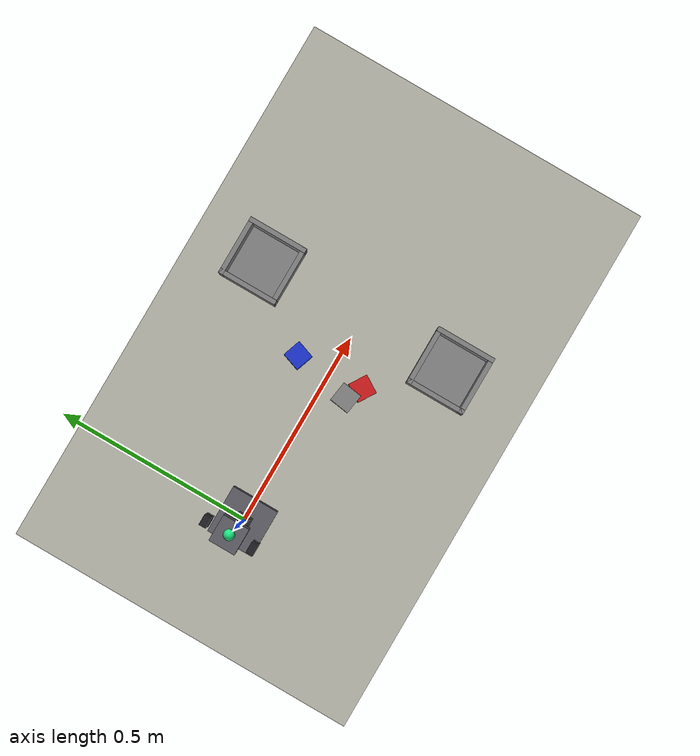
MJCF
<mujoco model="Autonomous reference tabletop arm scene_task_req_a_tabletop_robot_arm_that_sorts_red_and_blue_blo_variation_009">
  <compiler angle="radian" coordinate="local" />
  <option timestep="0.002" gravity="0 0 -9.81" />
  <!-- scene_set_id=scenes_task_req_a_tabletop_robot_arm_that_sorts_red_and_blue_blo_variation scene_id=scene_task_req_a_tabletop_robot_arm_that_sorts_red_and_blue_blo_variation_009 -->
  <default>
    <joint damping="0.8" armature="0.01" />
    <geom friction="1 0.1 0.01" />
  </default>
  <asset>
    <material name="mat_red" rgba="0.8 0.1 0.1 1" />
    <material name="mat_blue" rgba="0.1 0.2 0.8 1" />
    <material name="mat_gray" rgba="0.5 0.5 0.5 1" />
    <material name="mat_link" rgba="0.35 0.35 0.38 1" />
  </asset>
  <worldbody>
    <light name="key" pos="0 0 2" dir="0 0 -1" />
    <geom name="table" type="box" size="0.7 0.45 0.025" pos="0.4 0 0" rgba="0.7 0.7 0.65 1" />
    <body name="base_link" pos="0.0 0.0 0.025">
      <geom name="base_link_geom" type="box" size="0.06 0.06 0.035" pos="0 0 0.035" mass="0.45" material="mat_link" />
      <body name="upper_link" pos="0.0 0.0 0.07">
        <joint name="base_yaw" type="hinge" axis="0.0 0.0 1.0" pos="0 0 0" limited="true" range="-3.14 3.14" />
        <geom name="upper_link_geom" type="box" size="0.018 0.018 0.035" pos="0 0 0.035" mass="0.22" material="mat_link" />
        <body name="forearm_link" pos="0.0 0.0 0.07">
          <joint name="shoulder_pitch" type="hinge" axis="0.0 1.0 0.0" pos="0 0 0" limited="true" range="-1.57 1.57" />
          <geom name="forearm_link_geom" type="box" size="0.016 0.016 0.1785" pos="0 0 0.1785" mass="0.18" material="mat_link" />
          <body name="wrist_link" pos="0.0 0.0 0.357">
            <joint name="elbow_pitch" type="hinge" axis="0.0 1.0 0.0" pos="0 0 0" limited="true" range="-1.57 1.57" />
            <geom name="wrist_link_geom" type="box" size="0.02 0.02 0.08" pos="0 0 0.08" mass="0.035" material="mat_link" />
            <camera name="wrist_rgbd_camera" pos="0.03 0.0 0.04" xyaxes="0 -1 0 0 0 1" mode="fixed" user="0.0 0.0 0.0" />
            <body name="gripper_link" pos="0.0 0.0 0.16">
              <geom name="gripper_link_geom" type="box" size="0.03 0.03 0.035" pos="0 0 0.035" mass="0.04" material="mat_link" />
              <site name="ee_site" pos="0 0 0.07" size="0.012" rgba="0.1 0.9 0.5 1" />
              <site name="grasp_site" pos="0 0 0.015" size="0.01" rgba="1 0.7 0.1 1" />
              <body name="left_gripper_finger" pos="0 0.055 0.07">
                <joint name="left_gripper_slide" type="slide" axis="0 -1 0" limited="true" range="0 0.04" damping="2.0" />
                <geom name="left_gripper_pad" type="box" size="0.012 0.008 0.055" pos="0 0 -0.045" mass="0.025" rgba="0.12 0.12 0.14 1" friction="1.5 0.1 0.01" />
              </body>
              <body name="right_gripper_finger" pos="0 -0.055 0.07">
                <joint name="right_gripper_slide" type="slide" axis="0 1 0" limited="true" range="0 0.04" damping="2.0" />
                <geom name="right_gripper_pad" type="box" size="0.012 0.008 0.055" pos="0 0 -0.045" mass="0.025" rgba="0.12 0.12 0.14 1" friction="1.5 0.1 0.01" />
              </body>
            </body>
          </body>
        </body>
      </body>
    </body>
    <body name="obj_red_block" pos="0.4101 -0.085 0.0503" euler="0 0 2.5852">
      <freejoint name="free_red_block" />
      <geom name="red_block" type="box" size="0.0243 0.0243 0.0243" mass="0.0433" friction="1.108 0.1 0.01" material="mat_red" />
    </body>
    <body name="obj_blue_block" pos="0.4009 0.085 0.0497" euler="0 0 -0.3353">
      <freejoint name="free_blue_block" />
      <geom name="blue_block" type="box" size="0.0237 0.0237 0.0237" mass="0.0475" friction="1.203 0.1 0.01" material="mat_blue" />
    </body>
    <geom name="red_bin" type="box" size="0.07 0.07 0.004" pos="0.55 -0.2418 0.029" material="mat_gray" />
    <geom name="red_bin_wall_px" type="box" size="0.006 0.07600000000000001 0.04" pos="0.62 -0.2418 0.065" material="mat_gray" />
    <geom name="red_bin_wall_nx" type="box" size="0.006 0.07600000000000001 0.04" pos="0.48 -0.2418 0.065" material="mat_gray" />
    <geom name="red_bin_wall_py" type="box" size="0.07600000000000001 0.006 0.04" pos="0.55 -0.1718 0.065" material="mat_gray" />
    <geom name="red_bin_wall_ny" type="box" size="0.07600000000000001 0.006 0.04" pos="0.55 -0.3118 0.065" material="mat_gray" />
    <geom name="blue_bin" type="box" size="0.07 0.07 0.004" pos="0.55 0.268 0.029" material="mat_gray" />
    <geom name="blue_bin_wall_px" type="box" size="0.006 0.07600000000000001 0.04" pos="0.62 0.268 0.065" material="mat_gray" />
    <geom name="blue_bin_wall_nx" type="box" size="0.006 0.07600000000000001 0.04" pos="0.48 0.268 0.065" material="mat_gray" />
    <geom name="blue_bin_wall_py" type="box" size="0.07600000000000001 0.006 0.04" pos="0.55 0.338 0.065" material="mat_gray" />
    <geom name="blue_bin_wall_ny" type="box" size="0.07600000000000001 0.006 0.04" pos="0.55 0.198 0.065" material="mat_gray" />
    <body name="obj_distractor_9_0" pos="0.3714 -0.062 0.0516" euler="0 0 -1.7138">
      <freejoint name="free_distractor_9_0" />
      <geom name="distractor_9_0" type="box" size="0.0256 0.0256 0.0256" mass="0.0575" friction="1.261 0.1 0.01" material="mat_gray" />
    </body>
  </worldbody>
  <actuator>
    <motor name="base_yaw_motor" joint="base_yaw" gear="1" forcerange="-12.0 12.0" />
    <motor name="shoulder_pitch_motor" joint="shoulder_pitch" gear="1" forcerange="-12.0 12.0" />
    <motor name="elbow_pitch_motor" joint="elbow_pitch" gear="1" forcerange="-12.0 12.0" />
    <motor name="left_gripper_slide_motor" joint="left_gripper_slide" gear="1" forcerange="-25 25" />
    <motor name="right_gripper_slide_motor" joint="right_gripper_slide" gear="1" forcerange="-25 25" />
  </actuator>
  <sensor>
    <framepos name="wrist_rgbd_camera_pose" objtype="camera" objname="wrist_rgbd_camera" />
    <framequat name="wrist_rgbd_camera_orientation" objtype="camera" objname="wrist_rgbd_camera" />
  </sensor>
</mujoco>
